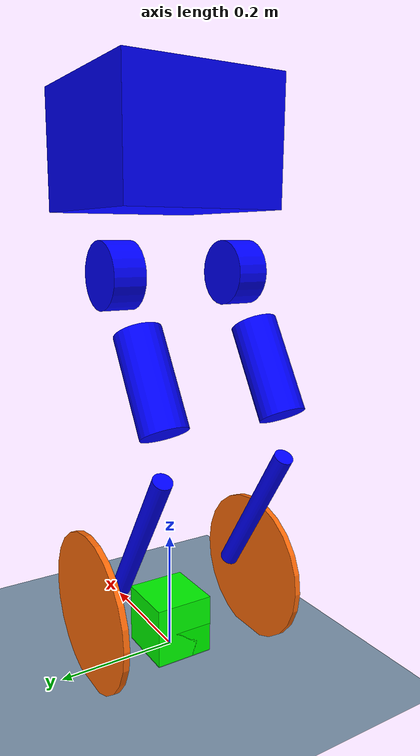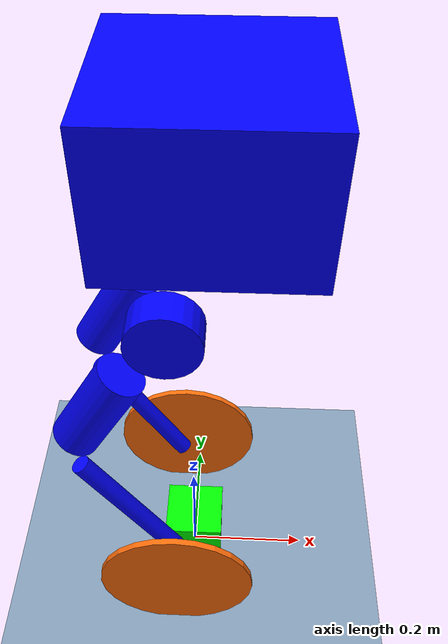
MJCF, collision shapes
<mujoco model="wheel_biped">
    <compiler angle="radian" meshdir="../meshes/" />
    <size njmax="500" nconmax="100" />

    <default>
        <light castshadow="false" diffuse="1 1 1" />
        <camera fovy="60"/>
        <default class="visual">
            <geom contype="0" conaffinity="0" group="1" type="mesh" rgba="0.9 0.9 0.9 1.0"/>
        </default>
        <joint armature="0.01" damping="0.01"/>
        <geom contype="1" conaffinity="1" condim="3" friction="0.6 0.005 0.0001" rgba="0.5 0.6 0.7 0.0" margin="0.001" group="0" />
    </default>
    <visual>
        <rgba com="0.502 1.0 0 0.5" contactpoint="1.0 1.0 0.6 0.4" contactforce="0.2 0.98 0.2 0.8"/>
        <scale com="0.2" forcewidth="0.05" contactwidth="0.10" contactheight="0.04"/>
    </visual>

    <asset>
        <mesh name="base_Link" file="base_Link.STL" />
        <mesh name="abad_L_Link" file="abad_L_Link.STL" />
        <mesh name="hip_L_Link" file="hip_L_Link.STL" />
        <mesh name="knee_L_Link" file="knee_L_Link.STL" />
        <mesh name="wheel_L_Link" file="wheel_L_Link.STL" />
        <mesh name="abad_R_Link" file="abad_R_Link.STL" />
        <mesh name="hip_R_Link" file="hip_R_Link.STL" />
        <mesh name="knee_R_Link" file="knee_R_Link.STL" />
        <mesh name="wheel_R_Link" file="wheel_R_Link.STL" />
    </asset>

    <asset>
        <texture type='skybox' builtin='gradient' width='512' height='512' rgb1="1.0 1.0 1.0" rgb2="1.0 1.0 1.0"/>
        <texture name="texplane" type="2d" builtin="checker" rgb1="0.35 0.35 0.35" rgb2="0.55 0.55 0.55" width="512" height="512" mark="cross" markrgb=".8 .8 .8"/>
        <material name="matplane" reflectance="0.0" texture="texplane" texrepeat="1 1" texuniform="true"/>
    </asset>
        <option timestep="0.01"/>

    <worldbody>
        <geom name="floor" rgba="0.5 0.6 0.7 1" pos="0 0 0" size="0 0 0.25" type="plane" material="matplane" condim="3"/>
        <camera name="track" mode="trackcom" pos="0 -2.3 1.6" xyaxes="1 0 0 0 0.707 0.707"/>
        <light directional="true" diffuse=".8 .8 .8" pos="0 0 10" dir="0 0 -10"/>

        <body name="base_Link" pos="0 0 0.9">
            <inertial pos="0.0457123 0.000139854 -0.163809" quat="0.972578 -0.00615364 -0.232461 0.00398682" mass="9.595" diaginertia="0.154712 0.11093 0.0846371" />
            <joint type="free" limited="false" damping="0.0000" stiffness="0.0000" armature="0"/>
            <site name="imu" pos="0 0 0"/>
            <geom class="visual" rgba="0.79216 0.81961 0.93333 1" mesh="base_Link" />
            <geom name="base_collision" size="0.135 0.13 0.095" pos="0.03 0 -0.072" type="box" rgba="0 0 1 0" />

            <body name="abad_L_Link" pos="0.05556 0.105 -0.2602">
                <inertial pos="-0.06977 0.04479 0.00057" quat="0.595024 0.579772 0.394141 0.393019" mass="1.469" diaginertia="0.00252289 0.00208104 0.00139163" />
                <joint name="abad_L_Joint" pos="0 0 0" axis="1 0 0" limited="true" range="-0.38397 1.39626" />
                <geom class="visual" rgba="0.79216 0.81961 0.93333 1" mesh="abad_L_Link" />
                <geom name="abad_L_collision" type="cylinder" pos="-0.08 0 0" euler="1.57 0 0" size="0.05 0.025" rgba="0 0 1 0" />

                <body name="hip_L_Link" pos="-0.077 0.0205 0">
                    <inertial pos="-0.02869 -0.0477 -0.03992" quat="0.853885 0.192797 0.226903 0.426877" mass="2.3" diaginertia="0.0233264 0.0230229 0.00277548" />
                    <joint name="hip_L_Joint" pos="0 0 0" axis="0 1 0" limited="true" range="-1.01229 1.39626" />
                    <geom class="visual" rgba="1 1 1 1" mesh="hip_L_Link" />
                    <geom name="hip_L_collision" type="cylinder" pos="-0.1 -0.025 -0.14" euler="0 0.53 0" size="0.035 0.075" rgba="0 0 1 0" />

                    <body name="knee_L_Link" pos="-0.15 -0.0205 -0.25981">
                        <inertial pos="0.11913 0.01106 -0.20363" quat="0.687012 -0.159981 -0.201582 0.679548" mass="1.49" diaginertia="0.0177107 0.0171855 0.001015" />
                        <joint name="knee_L_Joint" pos="0 0 0" axis="0 -1 0" limited="true" range="-0.872665 1.36136" />
                        <geom class="visual" rgba="0.79216 0.81961 0.93333 1" mesh="knee_L_Link" />
                        <geom name="knee_L_collision" type="cylinder" pos="0.078 0 -0.12" euler="0 -0.55 0" size="0.015 0.13" rgba ="0 0 1 0"/>

                        <body name="wheel_L_Link" pos="0.15 0.0435 -0.25981">
                            <inertial pos="3e-05 0.00807 -2e-05" quat="0.683013 0.183016 0.183017 0.683011" mass="1.08" diaginertia="0.00974272 0.00515568 0.00515344" />
                            <joint name="wheel_L_Joint" pos="0 0 0" axis="0 1 0" limited="true" range="-1000000 1000000" frictionloss="0.01" />
                            <geom class="visual" rgba="0.26667 0.26667 0.26667 1" mesh="wheel_L_Link" />
                            <geom name="wheel_L_collision" pos="0.0 0.008 0.0" size="0.127 0.005" quat="0.707107 0.707107 0 0" type="cylinder" rgba="1 0.423529 0.0392157 1" />
                        </body>
                    </body>
                </body>
            </body>
            <body name="abad_R_Link" pos="0.05556 -0.105 -0.2602">
                <inertial pos="-0.06977 -0.04479 0.00057" quat="0.393019 0.394141 0.579772 0.595024" mass="1.469" diaginertia="0.00252289 0.00208104 0.00139163" />
                <joint name="abad_R_Joint" pos="0 0 0" axis="1 0 0" limited="true" range="-1.39626 0.38397" />
                <geom class="visual" rgba="0.79216 0.81961 0.93333 1" mesh="abad_R_Link" />
                <geom name="abad_R_collision" type="cylinder" pos="-0.08 0 0" euler="1.57 0 0" size="0.05 0.025" rgba="0 0 1 0" />

                <body name="hip_R_Link" pos="-0.077 -0.0205 0">
                    <inertial pos="-0.02869 0.0477 -0.03992" quat="0.426877 0.226903 0.192797 0.853885" mass="2.3" diaginertia="0.0233264 0.0230229 0.00277548" />
                    <joint name="hip_R_Joint" pos="0 0 0" axis="0 -1 0" limited="true" range="-1.39626 1.01229" />
                    <geom class="visual" rgba="1 1 1 1" mesh="hip_R_Link" />
                    <geom name="hip_R_collision" type="cylinder" pos="-0.10 0.025 -0.14" euler="0 0.53 0" size="0.035 0.075" rgba="0 0 1 0" />

                    <body name="knee_R_Link" pos="-0.15 0.0205 -0.25981">
                        <inertial pos="0.11913 -0.01106 -0.20363" quat="0.679548 -0.201582 -0.159981 0.687012" mass="1.49" diaginertia="0.0177107 0.0171855 0.001015" />
                        <joint name="knee_R_Joint" pos="0 0 0" axis="0 1 0" limited="true" range="-1.36136 0.872665" />
                        <geom class="visual" rgba="0.79216 0.81961 0.93333 1" mesh="knee_R_Link" />
                        <geom name="knee_R_collision" type="cylinder" pos="0.078 0 -0.12" euler="0 -0.55 0" size="0.015 0.13" rgba ="0 0 1 0"/>

                        <body name="wheel_R_Link" pos="0.15 -0.0435 -0.25981">
                            <inertial pos="3e-05 -0.00807 -2e-05" quat="0.683011 0.183017 0.183016 0.683013" mass="1.08" diaginertia="0.00974272 0.00515568 0.00515344" />
                            <joint name="wheel_R_Joint" pos="0 0 0" axis="0 1 0" limited="true" range="-1000000 1000000" frictionloss="0.01" />
                            <geom class="visual" rgba="0.26667 0.26667 0.26667 1" mesh="wheel_R_Link" />
                            <geom name="wheel_R_collision" pos="0.0 -0.008 0.0" size="0.127 0.005" quat="0.707107 0.707107 0 0" type="cylinder" rgba="1 0.423529 0.0392157 1" />
                        </body>
                    </body>
                </body>
            </body>
       </body>
        <!-- Reference trajectory visualisation sites -->
        <site name="chassis_ref_0" size="0.05 0.05 0.05" rgba="0. 1. 0. 0.5" type="box"/>
        <site name="chassis_ref_1" size="0.05 0.05 0.05" rgba="0. 1. 0. 0.55" type="box"/>
        <site name="chassis_ref_2" size="0.05 0.05 0.05" rgba="0. 1. 0. 0.6" pos="0. 0. 0.05" type="box"/>
        <site name="chassis_ref_3" size="0.05 0.05 0.05" rgba="0. 1. 0. 0.65" pos="0. 0. 0.05" type="box"/>
        <site name="chassis_ref_4" size="0.05 0.05 0.05" rgba="0. 1. 0. 0.7" pos="0. 0. 0.05" type="box"/>
        <site name="chassis_ref_5" size="0.05 0.05 0.05" rgba="0. 1. 0. 0.75" pos="0. 0. 0.05" type="box"/>
        <site name="chassis_ref_6" size="0.05 0.05 0.05" rgba="0. 1. 0. 0.8" pos="0. 0. 0.05" type="box"/>
        <site name="chassis_ref_7" size="0.05 0.05 0.05" rgba="0. 1. 0. 0.85" pos="0. 0. 0.05" type="box"/>
        <site name="chassis_ref_8" size="0.05 0.05 0.05" rgba="0. 1. 0. 0.9" pos="0. 0. 0.05" type="box"/>
        <site name="chassis_ref_9" size="0.05 0.05 0.05" rgba="0. 1. 0. 0.95" pos="0. 0. 0.05" type="box"/>
        <site name="l_wheel_ref_0" size="0.05" rgba="0. 1. 0. 0.5" pos="0. 0. 0.05" type="sphere"/>
        <site name="l_wheel_ref_1" size="0.05" rgba="0. 1. 0. 0.55" pos="0. 0. 0.05" type="sphere"/>
        <site name="l_wheel_ref_2" size="0.05" rgba="0. 1. 0. 0.6" pos="0. 0. 0.05" type="sphere"/>
        <site name="l_wheel_ref_3" size="0.05" rgba="0. 1. 0. 0.65" pos="0. 0. 0.05" type="sphere"/>
        <site name="l_wheel_ref_4" size="0.05" rgba="0. 1. 0. 0.7" pos="0. 0. 0.05" type="sphere"/>
        <site name="l_wheel_ref_5" size="0.05" rgba="0. 1. 0. 0.75" pos="0. 0. 0.05" type="sphere"/>
        <site name="l_wheel_ref_6" size="0.05" rgba="0. 1. 0. 0.8" pos="0. 0. 0.05" type="sphere"/>
        <site name="l_wheel_ref_7" size="0.05" rgba="0. 1. 0. 0.85" pos="0. 0. 0.05" type="sphere"/>
        <site name="l_wheel_ref_8" size="0.05" rgba="0. 1. 0. 0.9" pos="0. 0. 0.05" type="sphere"/>
        <site name="l_wheel_ref_9" size="0.05" rgba="0. 1. 0. 0.95" pos="0. 0. 0.05" type="sphere"/>
        <site name="r_wheel_ref_0" size="0.05" rgba="0. 1. 0. 0.5" pos="0. 0. 0.05" type="sphere"/>
        <site name="r_wheel_ref_1" size="0.05" rgba="0. 1. 0. 0.55" pos="0. 0. 0.05" type="sphere"/>
        <site name="r_wheel_ref_2" size="0.05" rgba="0. 1. 0. 0.6" pos="0. 0. 0.05" type="sphere"/>
        <site name="r_wheel_ref_3" size="0.05" rgba="0. 1. 0. 0.65" pos="0. 0. 0.05" type="sphere"/>
        <site name="r_wheel_ref_4" size="0.05" rgba="0. 1. 0. 0.7" pos="0. 0. 0.05" type="sphere"/>
        <site name="r_wheel_ref_5" size="0.05" rgba="0. 1. 0. 0.75" pos="0. 0. 0.05" type="sphere"/>
        <site name="r_wheel_ref_6" size="0.05" rgba="0. 1. 0. 0.8" pos="0. 0. 0.05" type="sphere"/>
        <site name="r_wheel_ref_7" size="0.05" rgba="0. 1. 0. 0.85" pos="0. 0. 0.05" type="sphere"/>
        <site name="r_wheel_ref_8" size="0.05" rgba="0. 1. 0. 0.9" pos="0. 0. 0.05" type="sphere"/>
        <site name="r_wheel_ref_9" size="0.05" rgba="0. 1. 0. 0.95" pos="0. 0. 0.05" type="sphere"/>

        <!-- Predicted trajectory visualisation sites -->
        <site name="chassis_pred_0" size="0.05 0.05 0.05" rgba="0. 0. 1. 0.5" pos="0. 0. 0.05" type="box"/>
        <site name="chassis_pred_1" size="0.05 0.05 0.05" rgba="0. 0. 1. 0.55" pos="0. 0. 0.05" type="box"/>
        <site name="chassis_pred_2" size="0.05 0.05 0.05" rgba="0. 0. 1. 0.6" pos="0. 0. 0.05" type="box"/>
        <site name="chassis_pred_3" size="0.05 0.05 0.05" rgba="0. 0. 1. 0.65" pos="0. 0. 0.05" type="box"/>
        <site name="chassis_pred_4" size="0.05 0.05 0.05" rgba="0. 0. 1. 0.7" pos="0. 0. 0.05" type="box"/>
        <site name="chassis_pred_5" size="0.05 0.05 0.05" rgba="0. 0. 1. 0.75" pos="0. 0. 0.05" type="box"/>
        <site name="chassis_pred_6" size="0.05 0.05 0.05" rgba="0. 0. 1. 0.8" pos="0. 0. 0.05" type="box"/>
        <site name="chassis_pred_7" size="0.05 0.05 0.05" rgba="0. 0. 1. 0.85" pos="0. 0. 0.05" type="box"/>
        <site name="chassis_pred_8" size="0.05 0.05 0.05" rgba="0. 0. 1. 0.9" pos="0. 0. 0.05" type="box"/>
        <site name="chassis_pred_9" size="0.05 0.05 0.05" rgba="0. 0. 1. 0.95" pos="0. 0. 0.05" type="box"/>
        <site name="l_wheel_pred_0" size="0.05" rgba="0. 0. 1. 0.5" pos="0. 0. 0.05" type="sphere"/>
        <site name="l_wheel_pred_1" size="0.05" rgba="0. 0. 1. 0.55" pos="0. 0. 0.05" type="sphere"/>
        <site name="l_wheel_pred_2" size="0.05" rgba="0. 0. 1. 0.6" pos="0. 0. 0.05" type="sphere"/>
        <site name="l_wheel_pred_3" size="0.05" rgba="0. 0. 1. 0.65" pos="0. 0. 0.05" type="sphere"/>
        <site name="l_wheel_pred_4" size="0.05" rgba="0. 0. 1. 0.7" pos="0. 0. 0.05" type="sphere"/>
        <site name="l_wheel_pred_5" size="0.05" rgba="0. 0. 1. 0.75" pos="0. 0. 0.05" type="sphere"/>
        <site name="l_wheel_pred_6" size="0.05" rgba="0. 0. 1. 0.8" pos="0. 0. 0.05" type="sphere"/>
        <site name="l_wheel_pred_7" size="0.05" rgba="0. 0. 1. 0.85" pos="0. 0. 0.05" type="sphere"/>
        <site name="l_wheel_pred_8" size="0.05" rgba="0. 0. 1. 0.9" pos="0. 0. 0.05" type="sphere"/>
        <site name="l_wheel_pred_9" size="0.05" rgba="0. 0. 1. 0.95" pos="0. 0. 0.05" type="sphere"/>
        <site name="r_wheel_pred_0" size="0.05" rgba="0. 0. 1. 0.5" pos="0. 0. 0.05" type="sphere"/>
        <site name="r_wheel_pred_1" size="0.05" rgba="0. 0. 1. 0.55" pos="0. 0. 0.05" type="sphere"/>
        <site name="r_wheel_pred_2" size="0.05" rgba="0. 0. 1. 0.6" pos="0. 0. 0.05" type="sphere"/>
        <site name="r_wheel_pred_3" size="0.05" rgba="0. 0. 1. 0.65" pos="0. 0. 0.05" type="sphere"/>
        <site name="r_wheel_pred_4" size="0.05" rgba="0. 0. 1. 0.7" pos="0. 0. 0.05" type="sphere"/>
        <site name="r_wheel_pred_5" size="0.05" rgba="0. 0. 1. 0.75" pos="0. 0. 0.05" type="sphere"/>
        <site name="r_wheel_pred_6" size="0.05" rgba="0. 0. 1. 0.8" pos="0. 0. 0.05" type="sphere"/>
        <site name="r_wheel_pred_7" size="0.05" rgba="0. 0. 1. 0.85" pos="0. 0. 0.05" type="sphere"/>
        <site name="r_wheel_pred_8" size="0.05" rgba="0. 0. 1. 0.9" pos="0. 0. 0.05" type="sphere"/>
        <site name="r_wheel_pred_9" size="0.05" rgba="0. 0. 1. 0.95" pos="0. 0. 0.05" type="sphere"/>

    </worldbody>

    <actuator>
        <motor name="abad_L_Joint"   gear="1"  joint="abad_L_Joint"  ctrllimited='true' ctrlrange='-80 80'/>
        <motor name="hip_L_Joint"    gear="1"  joint="hip_L_Joint"   ctrllimited='true' ctrlrange='-80 80'/>
        <motor name="knee_L_Joint"   gear="1"  joint="knee_L_Joint"  ctrllimited='true' ctrlrange='-80 80'/>
        <motor name="wheel_L_Joint"  gear="1"  joint="wheel_L_Joint" ctrllimited='true' ctrlrange='-40 40'/>
        <motor name="abad_R_Joint"   gear="1"  joint="abad_R_Joint"  ctrllimited='true' ctrlrange='-80 80' />
        <motor name="hip_R_Joint"    gear="1"  joint="hip_R_Joint"   ctrllimited='true' ctrlrange='-80 80' />
        <motor name="knee_R_Joint"   gear="1"  joint="knee_R_Joint"  ctrllimited='true' ctrlrange='-80 80'/>
        <motor name="wheel_R_Joint"  gear="1"  joint="wheel_R_Joint" ctrllimited='true' ctrlrange='-40 40'/>
    </actuator>

    <sensor>
        <framequat name="quat" objtype="site" objname="imu"/>
        <gyro name="gyro" site="imu"/>
        <accelerometer name="acc" site="imu"/>
        <jointpos name="abad_L_Joint"    joint="abad_L_Joint" />
        <jointpos name="hip_L_Joint"     joint="hip_L_Joint" />
        <jointpos name="knee_L_Joint"    joint="knee_L_Joint" />
        <jointpos name="wheel_L_Joint"   joint="wheel_L_Joint" />
        <jointpos name="abad_R_Joint"    joint="abad_R_Joint" />
        <jointpos name="hip_R_Joint"     joint="hip_R_Joint" />
        <jointpos name="knee_R_Joint"    joint="knee_R_Joint" />
        <jointpos name="wheel_R_Joint"   joint="wheel_R_Joint" />
    </sensor>
</mujoco>
